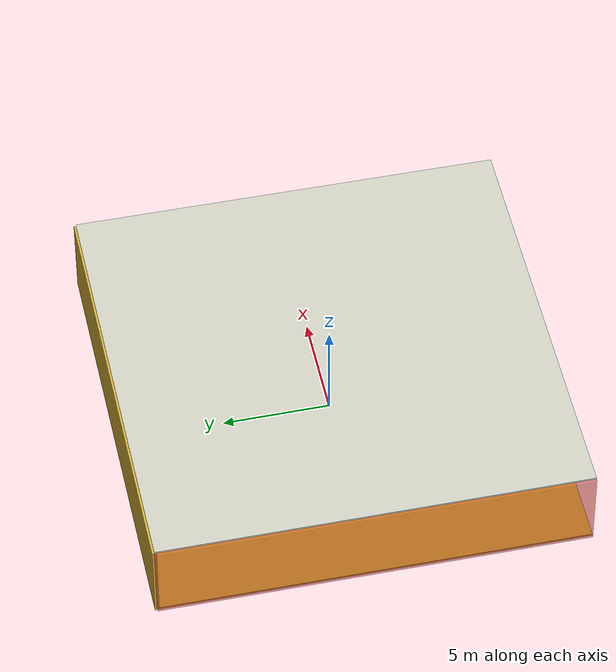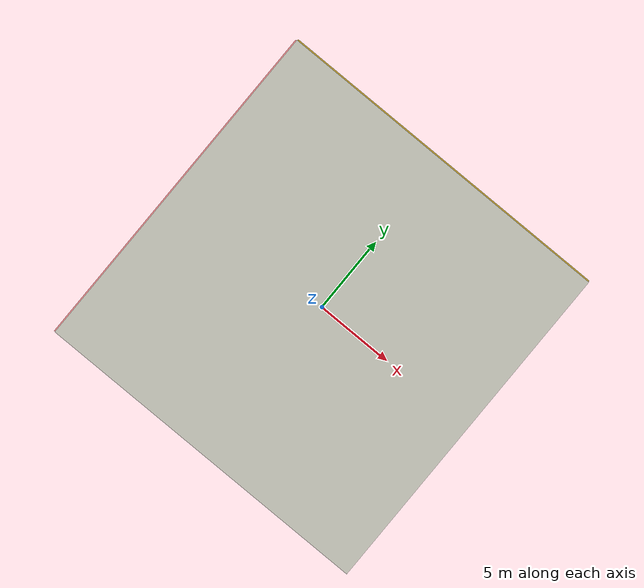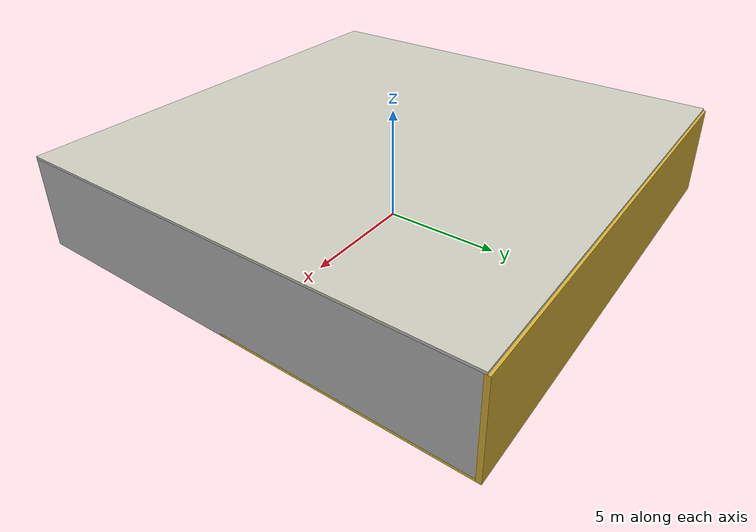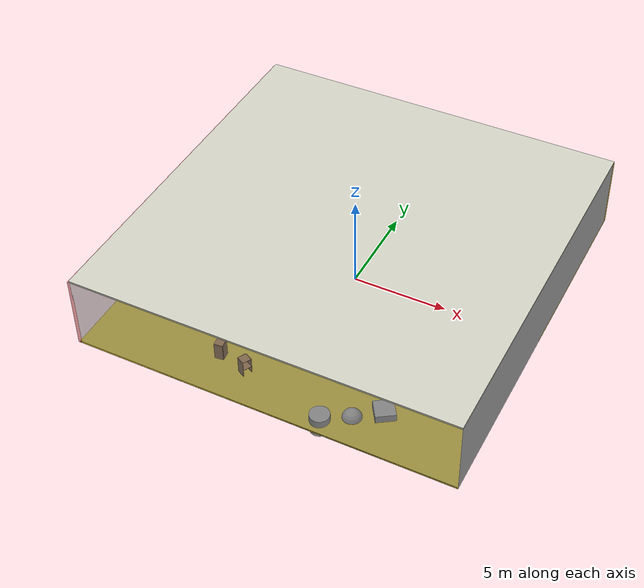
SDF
<sdf version="1.4">
 <world name="default">
  <physics type="ode">
   <max_step_size>0.001</max_step_size>
   <real_time_factor>1</real_time_factor>
   <real_time_update_rate>1000</real_time_update_rate>
   <gravity>0 0 -9.8</gravity>
  </physics>
  <scene><ambient>0.4 0.4 0.4 1</ambient><background>0.7 0.7 0.7 1</background><shadows>1</shadows></scene>
  <model name="Surrounding">
   <static>1</static>
   <link name="Ceiling">
    <collision name="Ceiling_Collision"><geometry><box><size>20 20 0.1</size></box></geometry></collision>
    <visual name="Ceiling_Visual">
     <geometry><box><size>20 20 0.1</size></box></geometry>
     <material>
      <script><uri>file://media/materials/scripts/gazebo.material</uri><name>Gazebo/PaintedWall</name></script>
     </material>
    </visual>
    <pose>0 0 4.05 0 0 0</pose>
   </link>
   <link name="Wall_South">
    <collision name="Wall_South_Collision">
     <geometry><box><size>20 0 4</size></box></geometry>
     <pose>0 0 2 0 -0 0</pose>
    </collision>
    <visual name="Wall_South_Visual">
     <pose>0 0 2 0 -0 0</pose>
     <geometry><box><size>20 0 4</size></box></geometry>
     <material>
      <script><uri>file://media/materials/scripts/gazebo.material</uri><name>Gazebo/GreyTransparent</name></script>
     </material>
    </visual>
    <velocity_decay><linear>0</linear><angular>0</angular></velocity_decay>
    <pose>0 -10 0 0 -0 0</pose>
   </link>
   <link name="Wall_East">
    <collision name="Wall_21_Collision">
     <geometry><box><size>20 0 4</size></box></geometry>
     <pose>0 0 2 0 -0 0</pose>
    </collision>
    <visual name="Wall_21_Visual">
     <pose>0 0 2 0 -0 0</pose>
     <geometry><box><size>20 0 4</size></box></geometry>
     <material>
      <script><uri>file://media/materials/scripts/gazebo.material</uri><name>Gazebo/PioneerBody</name></script>
     </material>
    </visual>
    <velocity_decay><linear>0</linear><angular>0</angular></velocity_decay>
    <pose>10 0 0 0 -0 1.5708</pose>
   </link>
   <link name="Wall_North">
    <collision name="Wall_22_Collision">
     <geometry><box><size>20 0.2 4</size></box></geometry>
     <pose>0 0 2 0 -0 0</pose>
    </collision>
    <visual name="Wall_22_Visual">
     <pose>0 0 2 0 -0 0</pose>
     <geometry><box><size>20 0.2 4</size></box></geometry>
     <material>
      <script><uri>file://media/materials/scripts/gazebo.material</uri><name>Gazebo/Gold</name></script>
     </material>
    </visual>
    <velocity_decay><linear>0</linear><angular>0</angular></velocity_decay>
    <pose>0 10 0 0 -0 0</pose>
   </link>
   <link name="Wall_West">
    <collision name="Wall_23_Collision">
     <geometry><box><size>20 0.2 4</size></box></geometry>
     <pose>0 0 2 0 -0 0</pose>
    </collision>
    <visual name="Wall_23_Visual">
     <pose>0 0 2 0 -0 0</pose>
     <geometry><box><size>20 0.2 4</size></box></geometry>
     <material>
      <script><uri>file://media/materials/scripts/gazebo.material</uri><name>Gazebo/RedTransparent</name></script>
     </material>
    </visual>
    <velocity_decay><linear>0</linear><angular>0</angular></velocity_decay>
    <pose>-10 0 0 0 0 -1.5708</pose>
   </link>
   <link name="Ground_link">
    <collision name="collision">
     <pose>0 0 .05 0 -0 0</pose>
     <geometry><box><size>20 20 0.1</size></box></geometry>
    </collision>
    <visual name="visual">
     <pose>0 0 .05 0 -0 0</pose>
     <geometry><box><size>20 20 0.1</size></box></geometry>
     <material>
      <script><uri>file://media/materials/scripts/gazebo.material</uri><name>Gazebo/ZincYellow</name></script>
     </material>
    </visual>
   </link>
   <static>1</static>
  </model>
  <spherical_coordinates>
   <surface_model>EARTH_WGS84</surface_model>
   <latitude_deg>0</latitude_deg>
   <longitude_deg>0</longitude_deg>
   <elevation>0</elevation>
   <heading_deg>0</heading_deg>
  </spherical_coordinates>
  <light name="lightball_0" type="diffuse">
   <diffuse>0.8 0.8 0.8 1</diffuse>
   <specular>0.2 0.2 0.2 1</specular>
   <attenuation>
    <range>100</range>
    <constant>0.7</constant>
    <linear>0.01</linear>
    <quadratic>0.001</quadratic>
   </attenuation>
   <direction>-0.5 0.1 -0.9</direction>
   <pose>3.19056143281 1.25327319227 2.14242232254 0 0 0</pose>
  </light>
  <light name="lightball_1" type="diffuse">
   <diffuse>0.8 0.8 0.8 1</diffuse>
   <specular>0.2 0.2 0.2 1</specular>
   <attenuation>
    <range>100</range>
    <constant>0.7</constant>
    <linear>0.01</linear>
    <quadratic>0.001</quadratic>
   </attenuation>
   <direction>-0.5 0.1 -0.9</direction>
   <pose>-3.58159998791 3.42641825801 0.628235038554 0 0 0</pose>
  </light>
  <light name="lightball_2" type="diffuse">
   <diffuse>0.8 0.8 0.8 1</diffuse>
   <specular>0.2 0.2 0.2 1</specular>
   <attenuation>
    <range>100</range>
    <constant>0.7</constant>
    <linear>0.01</linear>
    <quadratic>0.001</quadratic>
   </attenuation>
   <direction>-0.5 0.1 -0.9</direction>
   <pose>-9.62843812325 1.71423563244 1.82547812037 0 0 0</pose>
  </light>
  <light name="lightball_3" type="diffuse">
   <diffuse>0.8 0.8 0.8 1</diffuse>
   <specular>0.2 0.2 0.2 1</specular>
   <attenuation>
    <range>100</range>
    <constant>0.7</constant>
    <linear>0.01</linear>
    <quadratic>0.001</quadratic>
   </attenuation>
   <direction>-0.5 0.1 -0.9</direction>
   <pose>-8.48297966841 3.30849931142 2.90377978231 0 0 0</pose>
  </light>
  <include><uri>model://cabinet</uri><pose>-3.35233371715 -7.7697562157 0 0 0 0.112911223512</pose></include>
  <include><uri>model://cabinet</uri><pose>-1.76832872258 -8.18705059462 0 0 0 2.66867667272</pose></include>
  <include>
   <uri>model://construction_cone</uri>
   <pose>0.490369222562 -3.78011864633 0 0 0 1.53127171876</pose>
  </include>
  <include>
   <uri>model://construction_cone</uri>
   <pose>0.979562332214 -1.13741506814 0 0 0 0.123386110586</pose>
  </include>
  <include>
   <uri>model://textured_shapes</uri>
   <pose>4.02457158018 -8.42797450277 0 0 0 2.15327096384</pose>
  </include>
  <include><uri>model://cabinet</uri><pose>4.76735454104 4.723442627 0 0 0 1.43064068027</pose></include>
 </world>
</sdf>

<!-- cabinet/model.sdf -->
<sdf version="1.5">
  <model name="cabinet">
    <static>true</static>
    <link name="cabinet_bottom_plate">
      <inertial>
        <pose>0 0 -1 0 0 0</pose>
        <inertia>
          <ixx>2.050000</ixx>
          <ixy>0</ixy>
          <ixz>0</ixz>
          <iyy>2.050000</iyy>
          <iyz>0</iyz>
          <izz>2.050000</izz>
        </inertia>
        <mass>25.000000</mass>
      </inertial>
      <collision name="cabinet_bottom_plate_geom">
        <pose>0 0 0.010000 0 0 0</pose>
        <geometry>
          <box>
            <size>0.450000 0.450000 0.020000</size>
          </box>
        </geometry>
      </collision>
      <visual name="cabinet_bottom_plate_geom_visual">
        <pose>0 0 0.010000 0 0 0</pose>
        <geometry>
          <box>
            <size>0.450000 0.450000 0.020000</size>
          </box>
        </geometry>
        <material>
          <script>
            <uri>model://media/materials/scripts/gazebo.material</uri>
            <name>Gazebo/Wood</name>
          </script>
        </material>
      </visual>
      <collision name="cabinet_bottom_plate_geom_cabinet_back_plate">
        <pose>0.235000 0 0.510000 0 0 0</pose>
        <geometry>
          <box>
            <size>0.020000 0.450000 1.020000</size>
          </box>
        </geometry>
      </collision>
      <visual name="cabinet_bottom_plate_geom_cabinet_back_plate_visual">
        <pose>0.235000 0 0.510000 0 0 0</pose>
        <geometry>
          <box>
            <size>0.020000 0.450000 1.020000</size>
          </box>
        </geometry>
        <material>
          <script>
            <uri>model://media/materials/scripts/gazebo.material</uri>
            <name>Gazebo/Wood</name>
          </script>
        </material>
      </visual>
      <collision name="cabinet_bottom_plate_geom_cabinet_left_plate">
        <pose>0 0.235000 0.510000 0 0 0</pose>
        <geometry>
          <box>
            <size>0.450000 0.020000 1.020000</size>
          </box>
        </geometry>
      </collision>
      <visual name="cabinet_bottom_plate_geom_cabinet_left_plate_visual">
        <pose>0 0.235000 0.510000 0 0 0</pose>
        <geometry>
          <box>
            <size>0.450000 0.020000 1.020000</size>
          </box>
        </geometry>
        <material>
          <script>
            <uri>model://media/materials/scripts/gazebo.material</uri>
            <name>Gazebo/Wood</name>
          </script>
        </material>
      </visual>
      <collision name="cabinet_bottom_plate_geom_cabinet_middle_plate">
        <pose>0 0 0.510000 0 0 0</pose>
        <geometry>
          <box>
            <size>0.450000 0.450000 0.020000</size>
          </box>
        </geometry>
      </collision>
      <visual name="cabinet_bottom_plate_geom_cabinet_middle_plate_visual">
        <pose>0 0 0.510000 0 0 0</pose>
        <geometry>
          <box>
            <size>0.450000 0.450000 0.020000</size>
          </box>
        </geometry>
        <material>
          <script>
            <uri>model://media/materials/scripts/gazebo.material</uri>
            <name>Gazebo/Wood</name>
          </script>
        </material>
      </visual>
      <collision name="cabinet_bottom_plate_geom_cabinet_right_plate">
        <pose>0 -0.235000 0.510000 0 0 0</pose>
        <geometry>
          <box>
            <size>0.450000 0.020000 1.020000</size>
          </box>
        </geometry>
      </collision>
      <visual name="cabinet_bottom_plate_geom_cabinet_right_plate_visual">
        <pose>0 -0.235000 0.510000 0 0 0</pose>
        <geometry>
          <box>
            <size>0.450000 0.020000 1.020000</size>
          </box>
        </geometry>
        <material>
          <script>
            <uri>model://media/materials/scripts/gazebo.material</uri>
            <name>Gazebo/Wood</name>
          </script>
        </material>
      </visual>
      <collision name="cabinet_bottom_plate_geom_cabinet_top_plate">
        <pose>0 0 1.010000 0 0 0</pose>
        <geometry>
          <box>
            <size>0.450000 0.450000 0.020000</size>
          </box>
        </geometry>
      </collision>
      <visual name="cabinet_bottom_plate_geom_cabinet_top_plate_visual">
        <pose>0 0 1.010000 0 0 0</pose>
        <geometry>
          <box>
            <size>0.450000 0.450000 0.020000</size>
          </box>
        </geometry>
        <material>
          <script>
            <uri>model://media/materials/scripts/gazebo.material</uri>
            <name>Gazebo/Wood</name>
          </script>
        </material>
      </visual>
    </link>
  </model>
</sdf>

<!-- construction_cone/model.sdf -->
<sdf version="1.5">
  <model name="Construction Cone">
    <link name="link">
      <collision name="collision">
        <geometry>
          <mesh>
            <scale>10 10 10</scale>
            <uri>file://isr-testbed/construction_cone/meshes/construction_cone.dae</uri>
          </mesh>
        </geometry>
      </collision>
      <visual name="visual">
        <geometry>
          <mesh>
            <scale>10 10 10</scale>
            <uri>file://isr-testbed/construction_cone/meshes/construction_cone.dae</uri>
          </mesh>
        </geometry>
      </visual>
    </link>
  </model>
</sdf>

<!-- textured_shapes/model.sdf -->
<sdf version="1.6">
  <model name="textured_shapes">
    <pose>0 0 0.5 0 0 0</pose>
    <link name="box">
      <pose>0 -1.5 0 0 0 0</pose>
      <collision name="collision">
        <geometry>
          <box>
            <size>1 1 1</size>
          </box>
        </geometry>
      </collision>
      <visual name="visual">
        <geometry>
          <box>
            <size>1 1 1</size>
          </box>
        </geometry>
        <material>
          <script>
            <uri>model://../model_source/models/textured_shapes/materials/scripts</uri>
            <uri>model://../model_source/models/textured_shapes/materials/textures</uri>
            <name>TexturedShape/Squares</name>
          </script>
        </material>
      </visual>
    </link>
    <link name="sphere">
      <collision name="collision">
        <geometry>
          <sphere>
            <radius>0.5</radius>
          </sphere>
        </geometry>
      </collision>
      <visual name="visual">
        <geometry>
          <sphere>
            <radius>0.5</radius>
          </sphere>
        </geometry>
        <material>
          <script>
            <uri>model://../model_source/models/textured_shapes/materials/scripts</uri>
            <uri>model://../model_source/models/textured_shapes/materials/textures</uri>
            <name>TexturedShape/Squares</name>
          </script>
        </material>
      </visual>
    </link>
    <link name="cylinder">
      <pose>0 1.5 0 0 0 0</pose>
      <collision name="collision">
        <geometry>
          <cylinder>
            <radius>0.5</radius>
            <length>1</length>
          </cylinder>
        </geometry>
      </collision>
      <visual name="visual">
        <geometry>
          <cylinder>
            <radius>0.5</radius>
            <length>1</length>
          </cylinder>
        </geometry>
        <material>
          <script>
            <uri>model://../model_source/models/textured_shapes/materials/scripts</uri>
            <uri>model://../model_source/models/textured_shapes/materials/textures</uri>
            <name>TexturedShape/Squares</name>
          </script>
        </material>
      </visual>
    </link>
  </model>
</sdf>
